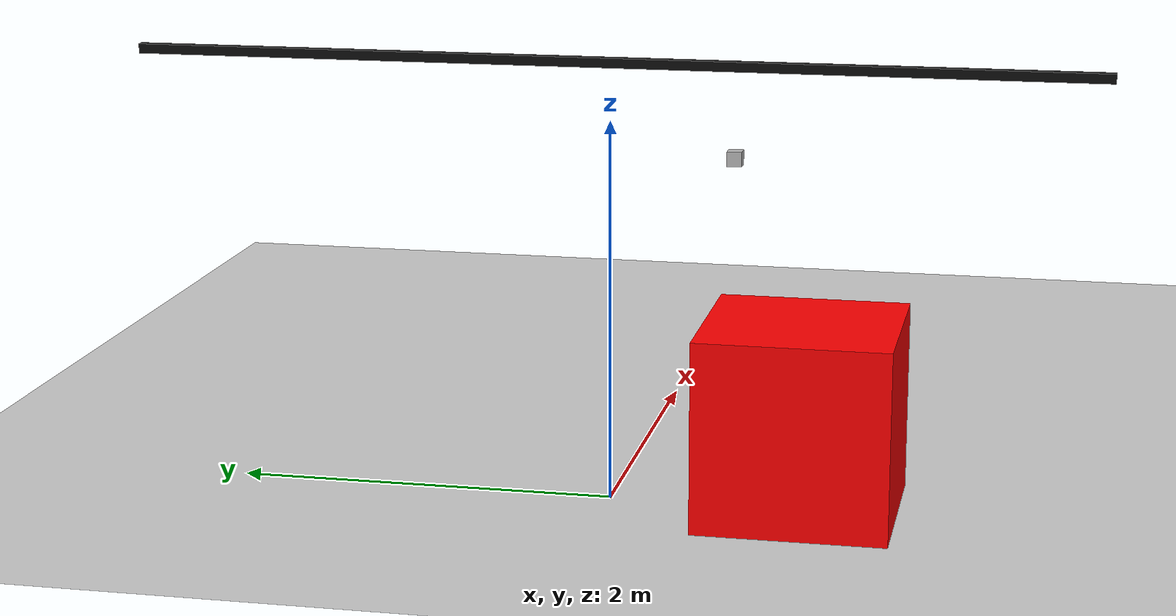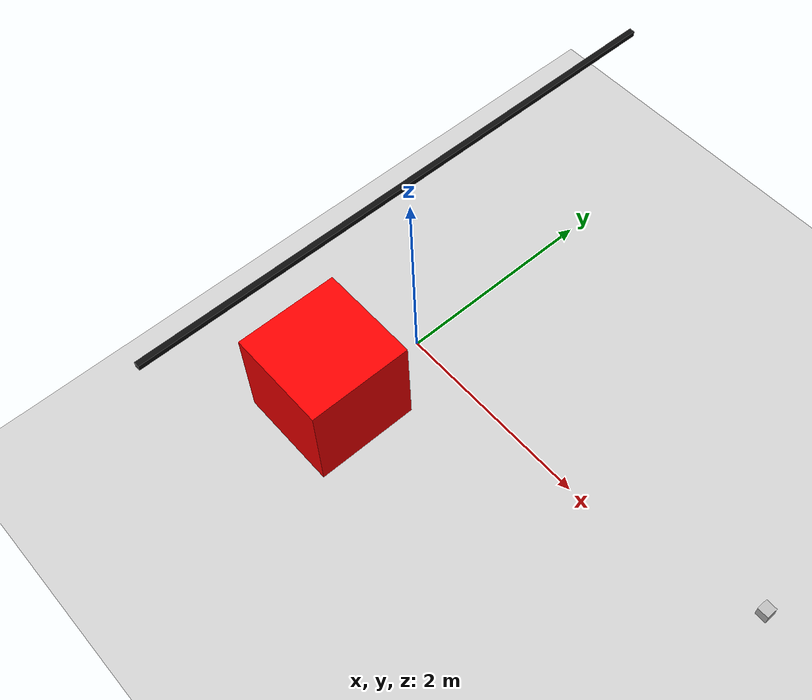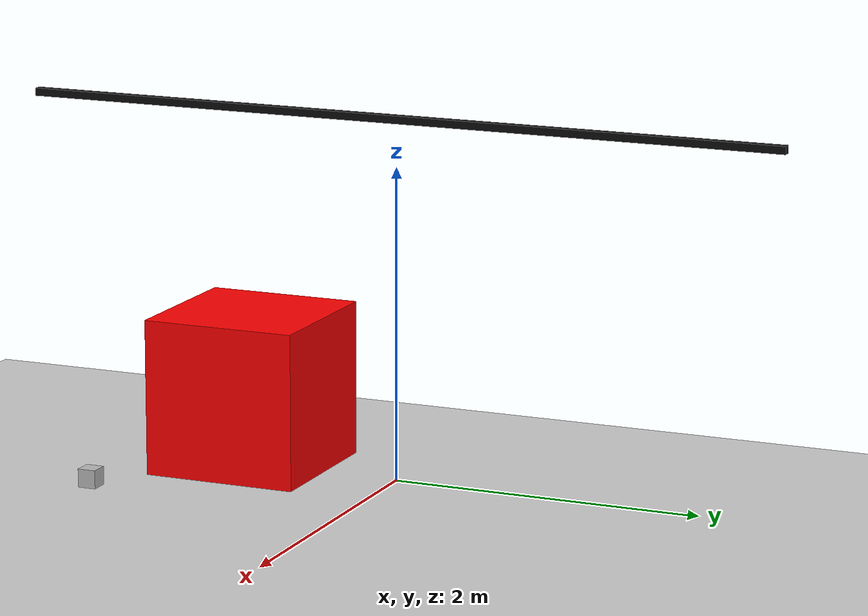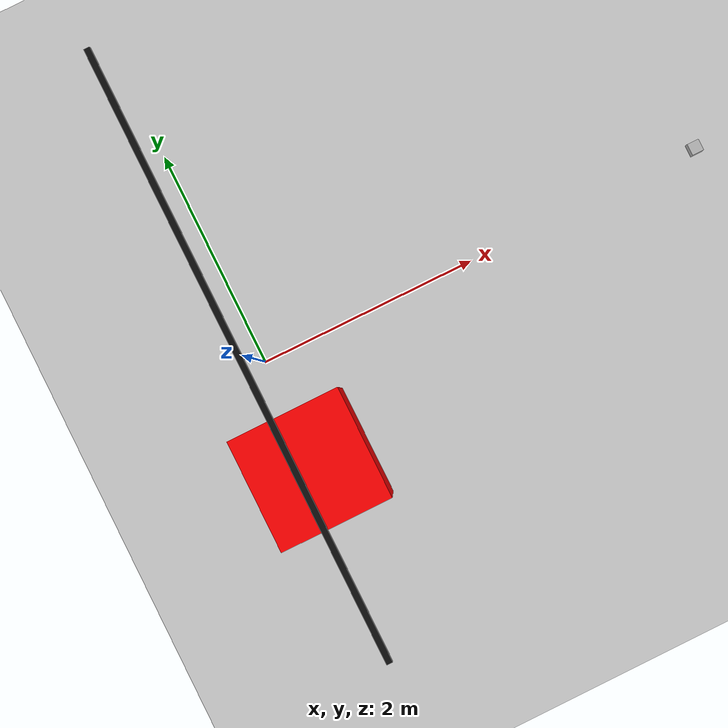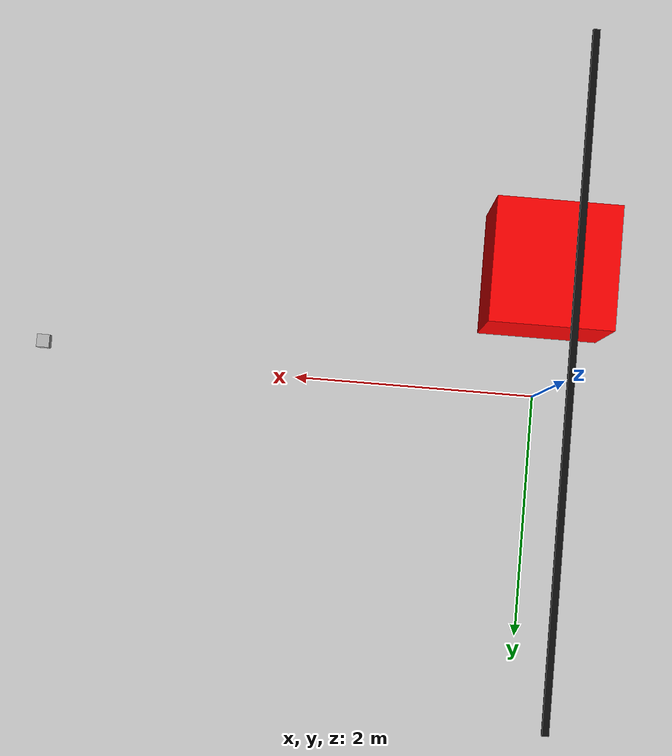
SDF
<?xml version="1.0" ?>

<sdf version="1.7">
  <world name="empty">
    <physics name="1ms" type="ignored">
      <max_step_size>0.001</max_step_size>
      <real_time_factor>1.0</real_time_factor>
    </physics>
    <plugin
      filename="gz-sim-physics-system"
      name="gz::sim::systems::Physics">
    </plugin>
    <plugin
      filename="gz-sim-user-commands-system"
      name="gz::sim::systems::UserCommands">
    </plugin>
    <plugin
      filename="gz-sim-scene-broadcaster-system"
      name="gz::sim::systems::SceneBroadcaster">
    </plugin>
    <plugin
      filename="gz-sim-contact-system"
      name="gz::sim::systems::Contact">
    </plugin>
    <plugin
      filename="gz-sim-sensors-system"
      name="gz::sim::systems::Sensors">
      <!-- Harmonic's Ogre2 backend does not register the Brown distortion
           pass, so this tutorial uses Ogre for the camera sensors. -->
      <render_engine>ogre</render_engine>
    </plugin>

    <gui fullscreen="0">
      <plugin filename="MinimalScene" name="3D View">
        <gz-gui>
          <title>3D View</title>
          <property type="bool" key="showTitleBar">false</property>
          <property type="string" key="state">docked</property>
        </gz-gui>
        <engine>ogre2</engine>
        <scene>scene</scene>
        <ambient_light>0.4 0.4 0.4</ambient_light>
        <background_color>0.8 0.8 0.8</background_color>
        <camera_pose>7 7 5 0 0.45 -2.35</camera_pose>
      </plugin>

      <plugin filename="GzSceneManager" name="Scene Manager">
        <gz-gui>
          <property key="state" type="string">floating</property>
          <property key="showTitleBar" type="bool">false</property>
          <property key="width" type="double">5</property>
          <property key="height" type="double">5</property>
        </gz-gui>
      </plugin>
      <plugin filename="InteractiveViewControl" name="Interactive view control">
        <gz-gui>
          <property key="state" type="string">floating</property>
          <property key="showTitleBar" type="bool">false</property>
          <property key="width" type="double">5</property>
          <property key="height" type="double">5</property>
        </gz-gui>
      </plugin>

      <!-- Play, pause, and single-step controls. Keep the widget on the
           bottom-right so it does not overlap the camera windows on the left. -->
      <plugin filename="WorldControl" name="World control">
        <gz-gui>
          <title>World control</title>
          <property key="showTitleBar" type="bool">false</property>
          <property key="resizable" type="bool">false</property>
          <property key="width" type="double">121</property>
          <property key="height" type="double">72</property>
          <property key="z" type="double">2</property>
          <property key="state" type="string">floating</property>
          <anchors target="3D View">
            <line own="right" target="right"/>
            <line own="bottom" target="bottom"/>
          </anchors>
        </gz-gui>
        <play_pause>true</play_pause>
        <step>true</step>
        <start_paused>true</start_paused>
        <use_event>true</use_event>
      </plugin>

      <plugin filename="ImageDisplay" name="Camera image">
        <gz-gui>
          <title>camera</title>
          <property key="state" type="string">floating</property>
          <property key="width" type="double">320</property>
          <property key="height" type="double">240</property>
          <property key="x" type="double">0</property>
          <property key="y" type="double">0</property>
          <property key="z" type="double">1</property>
        </gz-gui>
        <topic>camera</topic>
        <topic_picker>false</topic_picker>
      </plugin>
      <plugin filename="ImageDisplay" name="Noisy camera image">
        <gz-gui>
          <title>camera_noise</title>
          <property key="state" type="string">floating</property>
          <property key="width" type="double">320</property>
          <property key="height" type="double">240</property>
          <property key="x" type="double">0</property>
          <property key="y" type="double">240</property>
          <property key="z" type="double">1</property>
        </gz-gui>
        <topic>camera_noise</topic>
        <topic_picker>false</topic_picker>
      </plugin>
      <plugin filename="ImageDisplay" name="Distorted camera image">
        <gz-gui>
          <title>camera_distortion</title>
          <property key="state" type="string">floating</property>
          <property key="width" type="double">320</property>
          <property key="height" type="double">240</property>
          <property key="x" type="double">0</property>
          <property key="y" type="double">480</property>
          <property key="z" type="double">1</property>
        </gz-gui>
        <topic>camera_distortion</topic>
        <topic_picker>false</topic_picker>
      </plugin>
      <plugin filename="ImageDisplay" name="Grayscale camera image">
        <gz-gui>
          <title>camera_gray</title>
          <property key="state" type="string">floating</property>
          <property key="width" type="double">320</property>
          <property key="height" type="double">240</property>
          <property key="x" type="double">320</property>
          <property key="y" type="double">0</property>
          <property key="z" type="double">1</property>
        </gz-gui>
        <topic>camera_gray</topic>
        <topic_picker>false</topic_picker>
      </plugin>
    </gui>

    <light type="directional" name="sun">
      <cast_shadows>true</cast_shadows>
      <pose>0 0 10 0 0 0</pose>
      <diffuse>0.8 0.8 0.8 1</diffuse>
      <specular>0.2 0.2 0.2 1</specular>
      <attenuation>
        <range>1000</range>
        <constant>0.9</constant>
        <linear>0.01</linear>
        <quadratic>0.001</quadratic>
      </attenuation>
      <direction>-0.5 0.1 -0.9</direction>
    </light>

    <model name="ground_plane">
      <static>true</static>
      <link name="link">
        <collision name="collision">
          <geometry>
            <plane>
              <normal>0 0 1</normal>
              <size>100 100</size>
            </plane>
          </geometry>
        </collision>
        <visual name="visual">
          <geometry>
            <plane>
              <normal>0 0 1</normal>
              <size>100 100</size>
            </plane>
          </geometry>
          <material>
            <ambient>0.8 0.8 0.8 1</ambient>
            <diffuse>0.8 0.8 0.8 1</diffuse>
            <specular>0.8 0.8 0.8 1</specular>
          </material>
        </visual>
      </link>
    </model>

    <model name="box">
      <pose>0 -1 0.5 0 0 0</pose>
      <link name="box_link">
        <inertial>
          <inertia>
            <ixx>1</ixx>
            <ixy>0</ixy>
            <ixz>0</ixz>
            <iyy>1</iyy>
            <iyz>0</iyz>
            <izz>1</izz>
          </inertia>
          <mass>1.0</mass>
        </inertial>
        <collision name="box_collision">
          <geometry>
            <box>
              <size>1 1 1</size>
            </box>
          </geometry>
        </collision>

        <visual name="box_visual">
          <geometry>
            <box>
              <size>1 1 1</size>
            </box>
          </geometry>
          <material>
            <ambient>1 0 0 1</ambient>
            <diffuse>1 0 0 1</diffuse>
            <specular>1 0 0 1</specular>
          </material>
        </visual>
      </link>
    </model>

    <!-- Straight reference line makes the camera distortion easy to see. -->
    <model name="horizontal_reference_line">
      <static>true</static>
      <!-- Keep the line near the top of the camera image, where radial
           distortion is stronger than at the optical center. -->
      <pose>0 0 2.3 0 0 0</pose>
      <link name="link">
        <visual name="visual">
          <geometry>
            <box>
              <size>0.05 5 0.05</size>
            </box>
          </geometry>
          <material>
            <ambient>0.05 0.05 0.05 1</ambient>
            <diffuse>0.05 0.05 0.05 1</diffuse>
            <specular>0 0 0 1</specular>
          </material>
        </visual>
      </link>
    </model>

    <!-- camera -->
    <model name="camera">
      <pose>4 0 1.0 0 0.0 3.14</pose>
      <link name="link">
        <pose>0.05 0.05 0.05 0 0 0</pose>
        <inertial>
          <mass>0.1</mass>
          <inertia>
            <ixx>0.000166667</ixx>
            <iyy>0.000166667</iyy>
            <izz>0.000166667</izz>
          </inertia>
        </inertial>
        <collision name="collision">
          <geometry>
            <box>
              <size>0.1 0.1 0.1</size>
            </box>
          </geometry>
        </collision>
        <visual name="visual">
          <geometry>
            <box>
              <size>0.1 0.1 0.1</size>
            </box>
          </geometry>
        </visual>
        <sensor name="camera" type="camera">
          <camera>
            <camera_info_topic>camera/camera_info</camera_info_topic>
            <horizontal_fov>1.047</horizontal_fov>
            <image>
              <width>320</width>
              <height>240</height>
            </image>
            <clip>
              <near>0.1</near>
              <far>100</far>
            </clip>
          </camera>
          <always_on>1</always_on>
          <update_rate>30</update_rate>
          <visualize>true</visualize>
          <topic>camera</topic>
        </sensor>
        <sensor name="camera_gray" type="camera">
          <camera>
            <camera_info_topic>camera_gray/camera_info</camera_info_topic>
            <horizontal_fov>1.047</horizontal_fov>
            <image>
              <width>320</width>
              <height>240</height>
              <format>L8</format>
            </image>
            <clip>
              <near>0.1</near>
              <far>100</far>
            </clip>
          </camera>
          <always_on>1</always_on>
          <update_rate>30</update_rate>
          <visualize>true</visualize>
          <topic>camera_gray</topic>
        </sensor>
        <sensor name="camera_noise" type="camera">
          <camera>
            <camera_info_topic>camera_noise/camera_info</camera_info_topic>
            <horizontal_fov>1.047</horizontal_fov>
            <image>
              <width>320</width>
              <height>240</height>
            </image>
            <clip>
              <near>0.1</near>
              <far>100</far>
            </clip>
            <noise>
              <type>gaussian</type>
              <mean>0.0</mean>
              <stddev>0.20</stddev>
            </noise>
          </camera>
          <always_on>1</always_on>
          <update_rate>30</update_rate>
          <visualize>true</visualize>
          <topic>camera_noise</topic>
        </sensor>
        <sensor name="camera_distortion" type="camera">
          <camera>
            <camera_info_topic>camera_distortion/camera_info</camera_info_topic>
            <horizontal_fov>1.047</horizontal_fov>
            <image>
              <width>320</width>
              <height>240</height>
            </image>
            <clip>
              <near>0.1</near>
              <far>100</far>
            </clip>
            <distortion>
              <k1>-0.4</k1>
              <k2>0.2</k2>
              <k3>0.0</k3>
              <p1>0.02</p1>
              <p2>-0.02</p2>
              <center>0.5 0.5</center>
            </distortion>
          </camera>
          <always_on>1</always_on>
          <update_rate>30</update_rate>
          <visualize>true</visualize>
          <topic>camera_distortion</topic>
        </sensor>
      </link>
    </model>
  </world>
</sdf>
